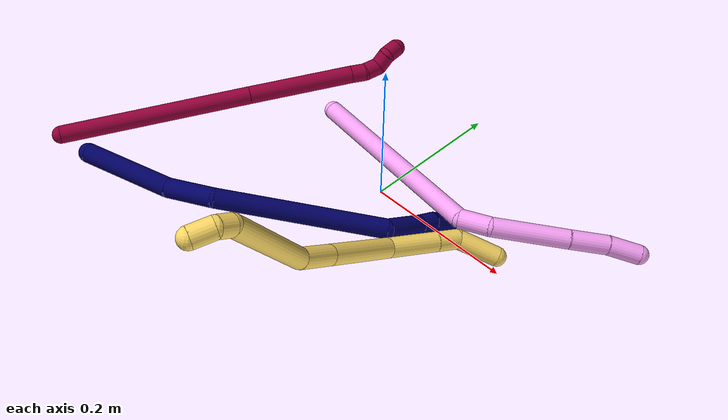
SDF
<sdf version="1.7">
 <world name="default">
  <model name="photoneo_s_sensor">
   <static>1</static>
   <pose>0 0 2 1.57079 1.57079 3.14159</pose>
   <link name="link">
    <inertial><mass>0.1</mass></inertial>
    <sensor name="sensor" type="depth">
     <update_rate>30</update_rate>
     <camera>
      <horizontal_fov>1.22</horizontal_fov>
      <image><width>1920</width><height>1200</height><format>B8G8R8</format></image>
      <clip><near>0.1</near><far>4</far></clip>
      <depth_camera><output>points</output></depth_camera>
     </camera>
     <plugin name="camera_plugin" filename="libgazebo_ros_depth_camera.so">
      <baseline>0.2</baseline>
      <alwaysOn>1</alwaysOn>
      <updateRate>0.0</updateRate>
      <cameraName>camera_ir</cameraName>
      <imageTopicName>/camera/color/image_raw</imageTopicName>
      <cameraInfoTopicName>/camera/color/camera_info</cameraInfoTopicName>
      <depthImageTopicName>/camera/depth/image_raw</depthImageTopicName>
      <depthImageCameraInfoTopicName>/camera/depth/camera_info</depthImageCameraInfoTopicName>
      <pointCloudTopicName>/camera/depth/points</pointCloudTopicName>
      <frameName>fr_optical</frameName>
      <pointCloudCutoff>0.1</pointCloudCutoff>
      <pointCloudCutoffMax>2.0</pointCloudCutoffMax>
      <distortionK1>0</distortionK1>
      <distortionK2>0</distortionK2>
      <distortionK3>0</distortionK3>
      <distortionT1>0</distortionT1>
      <distortionT2>0</distortionT2>
      <CxPrime>0</CxPrime>
      <Cx>0</Cx>
      <Cy>0</Cy>
      <focalLength>0</focalLength>
      <hackBaseline>0</hackBaseline>
     </plugin>
    </sensor>
   </link>
  </model>
  <model name="bin">
   <static>1</static>
   <link name="bottom">
    <collision name="collision-bottom">
     <pose>0 0 -0.01 0 -0 0</pose>
     <geometry><box><size>0.8 0.6 0.02</size></box></geometry>
     <surface>
      <friction><ode><mu>100</mu><mu2>100</mu2></ode></friction>
      <contact><collide_bitmask>65535</collide_bitmask></contact>
     </surface>
    </collision>
   </link>
   <link name="west_wall">
    <collision name="collision-west_wall">
     <pose>-0.41 0 0.1 0 -0 0</pose>
     <geometry><box><size>0.02 0.6 0.2</size></box></geometry>
     <surface>
      <friction><ode><mu>100</mu><mu2>100</mu2></ode></friction>
      <contact><collide_bitmask>65535</collide_bitmask></contact>
     </surface>
    </collision>
   </link>
   <link name="east_wall">
    <collision name="collision-east_wall">
     <pose>0.41 0 0.1 0 -0 0</pose>
     <geometry><box><size>0.02 0.6 0.2</size></box></geometry>
     <surface>
      <friction><ode><mu>100</mu><mu2>100</mu2></ode></friction>
      <contact><collide_bitmask>65535</collide_bitmask></contact>
     </surface>
    </collision>
   </link>
   <link name="south_wall">
    <collision name="collision-south_wall">
     <pose>0 -0.31 0.1 0 -0 0</pose>
     <geometry><box><size>0.8 0.02 0.2</size></box></geometry>
     <surface>
      <friction><ode><mu>100</mu><mu2>100</mu2></ode></friction>
      <contact><collide_bitmask>65535</collide_bitmask></contact>
     </surface>
    </collision>
   </link>
   <link name="north_wall">
    <collision name="collision-north_wall">
     <pose>0 0.31 0.1 0 -0 0</pose>
     <geometry><box><size>0.8 0.02 0.2</size></box></geometry>
     <surface>
      <friction><ode><mu>100</mu><mu2>100</mu2></ode></friction>
      <contact><collide_bitmask>65535</collide_bitmask></contact>
     </surface>
    </collision>
   </link>
  </model>
  <model name="4">
   <static>0</static>
   <link name="4">
    <collision name="collision-cylinder-e_1_1_4">
     <pose>0.112758 0.026613 0.068815 -0.369014 0.99138 -0.201148</pose>
     <geometry><cylinder><radius>0.0125</radius><length>0.269504</length></cylinder></geometry>
     <surface>
      <friction><ode><mu>1.16</mu><mu2>1.16</mu2><slip1>0</slip1><slip2>0</slip2></ode></friction>
      <contact><ode><kp>1e+06</kp><kd>1</kd><max_vel>0</max_vel><min_depth>0.001</min_depth></ode></contact>
     </surface>
    </collision>
    <visual name="visual-cylinder-e_1_1_4">
     <pose>0.112758 0.026613 0.068815 -0.369014 0.99138 -0.201148</pose>
     <geometry><cylinder><radius>0.0125</radius><length>0.269504</length></cylinder></geometry>
     <material><ambient>1 0.65098 0.996078 1</ambient></material>
    </visual>
    <collision name="collision-cylinder-e_2_4_5">
     <pose>0.241209 0.064983 0.140675 -1.31732 0.91213 -0.725718</pose>
     <geometry><cylinder><radius>0.0125</radius><length>0.039687</length></cylinder></geometry>
     <surface>
      <friction><ode><mu>1.16</mu><mu2>1.16</mu2><slip1>0</slip1><slip2>0</slip2></ode></friction>
      <contact><ode><kp>1e+06</kp><kd>1</kd><max_vel>0</max_vel><min_depth>0.001</min_depth></ode></contact>
     </surface>
    </collision>
    <visual name="visual-cylinder-e_2_4_5">
     <pose>0.241209 0.064983 0.140675 -1.31732 0.91213 -0.725718</pose>
     <geometry><cylinder><radius>0.0125</radius><length>0.039687</length></cylinder></geometry>
     <material><ambient>1 0.65098 0.996078 1</ambient></material>
    </visual>
    <collision name="collision-cylinder-e_3_5_6">
     <pose>0.292864 0.108201 0.132251 -1.92042 0.821038 -1.11283</pose>
     <geometry><cylinder><radius>0.0125</radius><length>0.098279</length></cylinder></geometry>
     <surface>
      <friction><ode><mu>1.16</mu><mu2>1.16</mu2><slip1>0</slip1><slip2>0</slip2></ode></friction>
      <contact><ode><kp>1e+06</kp><kd>1</kd><max_vel>0</max_vel><min_depth>0.001</min_depth></ode></contact>
     </surface>
    </collision>
    <visual name="visual-cylinder-e_3_5_6">
     <pose>0.292864 0.108201 0.132251 -1.92042 0.821038 -1.11283</pose>
     <geometry><cylinder><radius>0.0125</radius><length>0.098279</length></cylinder></geometry>
     <material><ambient>1 0.65098 0.996078 1</ambient></material>
    </visual>
    <collision name="collision-cylinder-e_4_6_7">
     <pose>0.346783 0.155473 0.112895 -2.03342 0.79348 -1.19039</pose>
     <geometry><cylinder><radius>0.0125</radius><length>0.050381</length></cylinder></geometry>
     <surface>
      <friction><ode><mu>1.16</mu><mu2>1.16</mu2><slip1>0</slip1><slip2>0</slip2></ode></friction>
      <contact><ode><kp>1e+06</kp><kd>1</kd><max_vel>0</max_vel><min_depth>0.001</min_depth></ode></contact>
     </surface>
    </collision>
    <visual name="visual-cylinder-e_4_6_7">
     <pose>0.346783 0.155473 0.112895 -2.03342 0.79348 -1.19039</pose>
     <geometry><cylinder><radius>0.0125</radius><length>0.050381</length></cylinder></geometry>
     <material><ambient>1 0.65098 0.996078 1</ambient></material>
    </visual>
    <collision name="collision-cylinder-e_5_7_2">
     <pose>0.381806 0.182302 0.099405 -2.04132 0.943947 -1.38827</pose>
     <geometry><cylinder><radius>0.0125</radius><length>0.042149</length></cylinder></geometry>
     <surface>
      <friction><ode><mu>1.16</mu><mu2>1.16</mu2><slip1>0</slip1><slip2>0</slip2></ode></friction>
      <contact><ode><kp>1e+06</kp><kd>1</kd><max_vel>0</max_vel><min_depth>0.001</min_depth></ode></contact>
     </surface>
    </collision>
    <visual name="visual-cylinder-e_5_7_2">
     <pose>0.381806 0.182302 0.099405 -2.04132 0.943947 -1.38827</pose>
     <geometry><cylinder><radius>0.0125</radius><length>0.042149</length></cylinder></geometry>
     <material><ambient>1 0.65098 0.996078 1</ambient></material>
    </visual>
    <collision name="collision-sphere-2">
     <pose>0.398874 0.193321 0.093801 0 -0 0</pose>
     <geometry><sphere><radius>0.0125</radius></sphere></geometry>
     <surface>
      <friction><ode><mu>1.16</mu><mu2>1.16</mu2><slip1>0</slip1><slip2>0</slip2></ode></friction>
      <contact><ode><kp>1e+06</kp><kd>1</kd><max_vel>0</max_vel><min_depth>0.001</min_depth></ode></contact>
     </surface>
    </collision>
    <visual name="visual-sphere-2">
     <pose>0.398874 0.193321 0.093801 0 -0 0</pose>
     <geometry><sphere><radius>0.0125</radius></sphere></geometry>
     <material><ambient>1 0.65098 0.996078 1</ambient></material>
    </visual>
    <collision name="collision-sphere-7">
     <pose>0.364738 0.171283 0.10501 0 -0 0</pose>
     <geometry><sphere><radius>0.0125</radius></sphere></geometry>
     <surface>
      <friction><ode><mu>1.16</mu><mu2>1.16</mu2><slip1>0</slip1><slip2>0</slip2></ode></friction>
      <contact><ode><kp>1e+06</kp><kd>1</kd><max_vel>0</max_vel><min_depth>0.001</min_depth></ode></contact>
     </surface>
    </collision>
    <visual name="visual-sphere-7">
     <pose>0.364738 0.171283 0.10501 0 -0 0</pose>
     <geometry><sphere><radius>0.0125</radius></sphere></geometry>
     <material><ambient>1 0.65098 0.996078 1</ambient></material>
    </visual>
    <collision name="collision-sphere-6">
     <pose>0.328827 0.139662 0.12078 0 -0 0</pose>
     <geometry><sphere><radius>0.0125</radius></sphere></geometry>
     <surface>
      <friction><ode><mu>1.16</mu><mu2>1.16</mu2><slip1>0</slip1><slip2>0</slip2></ode></friction>
      <contact><ode><kp>1e+06</kp><kd>1</kd><max_vel>0</max_vel><min_depth>0.001</min_depth></ode></contact>
     </surface>
    </collision>
    <visual name="visual-sphere-6">
     <pose>0.328827 0.139662 0.12078 0 -0 0</pose>
     <geometry><sphere><radius>0.0125</radius></sphere></geometry>
     <material><ambient>1 0.65098 0.996078 1</ambient></material>
    </visual>
    <collision name="collision-sphere-5">
     <pose>0.256901 0.07674 0.143721 0 -0 0</pose>
     <geometry><sphere><radius>0.0125</radius></sphere></geometry>
     <surface>
      <friction><ode><mu>1.16</mu><mu2>1.16</mu2><slip1>0</slip1><slip2>0</slip2></ode></friction>
      <contact><ode><kp>1e+06</kp><kd>1</kd><max_vel>0</max_vel><min_depth>0.001</min_depth></ode></contact>
     </surface>
    </collision>
    <visual name="visual-sphere-5">
     <pose>0.256901 0.07674 0.143721 0 -0 0</pose>
     <geometry><sphere><radius>0.0125</radius></sphere></geometry>
     <material><ambient>1 0.65098 0.996078 1</ambient></material>
    </visual>
    <collision name="collision-sphere-1">
     <geometry><sphere><radius>0.0125</radius></sphere></geometry>
     <surface>
      <friction><ode><mu>1.16</mu><mu2>1.16</mu2><slip1>0</slip1><slip2>0</slip2></ode></friction>
      <contact><ode><kp>1e+06</kp><kd>1</kd><max_vel>0</max_vel><min_depth>0.001</min_depth></ode></contact>
     </surface>
    </collision>
    <visual name="visual-sphere-1">
     <geometry><sphere><radius>0.0125</radius></sphere></geometry>
     <material><ambient>1 0.65098 0.996078 1</ambient></material>
    </visual>
    <collision name="collision-sphere-4">
     <pose>0.225516 0.053226 0.13763 0 -0 0</pose>
     <geometry><sphere><radius>0.0125</radius></sphere></geometry>
     <surface>
      <friction><ode><mu>1.16</mu><mu2>1.16</mu2><slip1>0</slip1><slip2>0</slip2></ode></friction>
      <contact><ode><kp>1e+06</kp><kd>1</kd><max_vel>0</max_vel><min_depth>0.001</min_depth></ode></contact>
     </surface>
    </collision>
    <visual name="visual-sphere-4">
     <pose>0.225516 0.053226 0.13763 0 -0 0</pose>
     <geometry><sphere><radius>0.0125</radius></sphere></geometry>
     <material><ambient>1 0.65098 0.996078 1</ambient></material>
    </visual>
    <inertial>
     <pose>0.204616 0.071804 0.094008 0 -0 0</pose>
     <mass>0.5</mass>
     <inertia>
      <ixx>0.000698</ixx>
      <ixy>0</ixy>
      <ixz>0</ixz>
      <iyy>0.001422</iyy>
      <iyz>0</iyz>
      <izz>-0.001841</izz>
     </inertia>
    </inertial>
   </link>
   <pose>-0.133405 0.041337 0.036365 0.703758 0.512741 0.031333</pose>
  </model>
  <model name="5">
   <static>0</static>
   <link name="5">
    <collision name="collision-cylinder-e_1_1_4">
     <pose>-0.000469 -0.005878 -0.012442 2.70026 -0.034043 -0.151488</pose>
     <geometry><cylinder><radius>0.0125</radius><length>0.027537</length></cylinder></geometry>
     <surface>
      <friction><ode><mu>1.16</mu><mu2>1.16</mu2><slip1>0</slip1><slip2>0</slip2></ode></friction>
      <contact><ode><kp>1e+06</kp><kd>1</kd><max_vel>0</max_vel><min_depth>0.001</min_depth></ode></contact>
     </surface>
    </collision>
    <visual name="visual-cylinder-e_1_1_4">
     <pose>-0.000469 -0.005878 -0.012442 2.70026 -0.034043 -0.151488</pose>
     <geometry><cylinder><radius>0.0125</radius><length>0.027537</length></cylinder></geometry>
     <material><ambient>1 0.858824 0.4 1</ambient></material>
    </visual>
    <collision name="collision-cylinder-e_2_4_5">
     <pose>0.002138 -0.011335 -0.034395 -3.09736 0.312423 -2.86255</pose>
     <geometry><cylinder><radius>0.0125</radius><length>0.020009</length></cylinder></geometry>
     <surface>
      <friction><ode><mu>1.16</mu><mu2>1.16</mu2><slip1>0</slip1><slip2>0</slip2></ode></friction>
      <contact><ode><kp>1e+06</kp><kd>1</kd><max_vel>0</max_vel><min_depth>0.001</min_depth></ode></contact>
     </surface>
    </collision>
    <visual name="visual-cylinder-e_2_4_5">
     <pose>0.002138 -0.011335 -0.034395 -3.09736 0.312423 -2.86255</pose>
     <geometry><cylinder><radius>0.0125</radius><length>0.020009</length></cylinder></geometry>
     <material><ambient>1 0.858824 0.4 1</ambient></material>
    </visual>
    <collision name="collision-cylinder-e_3_5_6">
     <pose>0.037023 0.025121 -0.099047 -2.56275 0.449883 -1.31034</pose>
     <geometry><cylinder><radius>0.0125</radius><length>0.146299</length></cylinder></geometry>
     <surface>
      <friction><ode><mu>1.16</mu><mu2>1.16</mu2><slip1>0</slip1><slip2>0</slip2></ode></friction>
      <contact><ode><kp>1e+06</kp><kd>1</kd><max_vel>0</max_vel><min_depth>0.001</min_depth></ode></contact>
     </surface>
    </collision>
    <visual name="visual-cylinder-e_3_5_6">
     <pose>0.037023 0.025121 -0.099047 -2.56275 0.449883 -1.31034</pose>
     <geometry><cylinder><radius>0.0125</radius><length>0.146299</length></cylinder></geometry>
     <material><ambient>1 0.858824 0.4 1</ambient></material>
    </visual>
    <collision name="collision-cylinder-e_4_6_7">
     <pose>0.078204 0.064306 -0.176658 -3.00235 0.391681 -2.46556</pose>
     <geometry><cylinder><radius>0.0125</radius><length>0.0491</length></cylinder></geometry>
     <surface>
      <friction><ode><mu>1.16</mu><mu2>1.16</mu2><slip1>0</slip1><slip2>0</slip2></ode></friction>
      <contact><ode><kp>1e+06</kp><kd>1</kd><max_vel>0</max_vel><min_depth>0.001</min_depth></ode></contact>
     </surface>
    </collision>
    <visual name="visual-cylinder-e_4_6_7">
     <pose>0.078204 0.064306 -0.176658 -3.00235 0.391681 -2.46556</pose>
     <geometry><cylinder><radius>0.0125</radius><length>0.0491</length></cylinder></geometry>
     <material><ambient>1 0.858824 0.4 1</ambient></material>
    </visual>
    <collision name="collision-cylinder-e_5_7_8">
     <pose>0.10717 0.073741 -0.24731 -3.01186 0.383321 -2.49553</pose>
     <geometry><cylinder><radius>0.0125</radius><length>0.104782</length></cylinder></geometry>
     <surface>
      <friction><ode><mu>1.16</mu><mu2>1.16</mu2><slip1>0</slip1><slip2>0</slip2></ode></friction>
      <contact><ode><kp>1e+06</kp><kd>1</kd><max_vel>0</max_vel><min_depth>0.001</min_depth></ode></contact>
     </surface>
    </collision>
    <visual name="visual-cylinder-e_5_7_8">
     <pose>0.10717 0.073741 -0.24731 -3.01186 0.383321 -2.49553</pose>
     <geometry><cylinder><radius>0.0125</radius><length>0.104782</length></cylinder></geometry>
     <material><ambient>1 0.858824 0.4 1</ambient></material>
    </visual>
    <collision name="collision-cylinder-e_6_8_9">
     <pose>0.128311 0.076997 -0.328807 3.05091 0.04618 0.941626</pose>
     <geometry><cylinder><radius>0.0125</radius><length>0.06698</length></cylinder></geometry>
     <surface>
      <friction><ode><mu>1.16</mu><mu2>1.16</mu2><slip1>0</slip1><slip2>0</slip2></ode></friction>
      <contact><ode><kp>1e+06</kp><kd>1</kd><max_vel>0</max_vel><min_depth>0.001</min_depth></ode></contact>
     </surface>
    </collision>
    <visual name="visual-cylinder-e_6_8_9">
     <pose>0.128311 0.076997 -0.328807 3.05091 0.04618 0.941626</pose>
     <geometry><cylinder><radius>0.0125</radius><length>0.06698</length></cylinder></geometry>
     <material><ambient>1 0.858824 0.4 1</ambient></material>
    </visual>
    <collision name="collision-cylinder-e_7_9_10">
     <pose>0.130638 0.072564 -0.377794 3.05227 0.049632 1.01398</pose>
     <geometry><cylinder><radius>0.0125</radius><length>0.031504</length></cylinder></geometry>
     <surface>
      <friction><ode><mu>1.16</mu><mu2>1.16</mu2><slip1>0</slip1><slip2>0</slip2></ode></friction>
      <contact><ode><kp>1e+06</kp><kd>1</kd><max_vel>0</max_vel><min_depth>0.001</min_depth></ode></contact>
     </surface>
    </collision>
    <visual name="visual-cylinder-e_7_9_10">
     <pose>0.130638 0.072564 -0.377794 3.05227 0.049632 1.01398</pose>
     <geometry><cylinder><radius>0.0125</radius><length>0.031504</length></cylinder></geometry>
     <material><ambient>1 0.858824 0.4 1</ambient></material>
    </visual>
    <collision name="collision-cylinder-e_8_10_2">
     <pose>0.120304 0.077766 -0.417046 -2.86847 -0.426093 2.00978</pose>
     <geometry><cylinder><radius>0.0125</radius><length>0.053788</length></cylinder></geometry>
     <surface>
      <friction><ode><mu>1.16</mu><mu2>1.16</mu2><slip1>0</slip1><slip2>0</slip2></ode></friction>
      <contact><ode><kp>1e+06</kp><kd>1</kd><max_vel>0</max_vel><min_depth>0.001</min_depth></ode></contact>
     </surface>
    </collision>
    <visual name="visual-cylinder-e_8_10_2">
     <pose>0.120304 0.077766 -0.417046 -2.86847 -0.426093 2.00978</pose>
     <geometry><cylinder><radius>0.0125</radius><length>0.053788</length></cylinder></geometry>
     <material><ambient>1 0.858824 0.4 1</ambient></material>
    </visual>
    <collision name="collision-sphere-2">
     <pose>0.109188 0.084372 -0.440628 0 -0 0</pose>
     <geometry><sphere><radius>0.0125</radius></sphere></geometry>
     <surface>
      <friction><ode><mu>1.16</mu><mu2>1.16</mu2><slip1>0</slip1><slip2>0</slip2></ode></friction>
      <contact><ode><kp>1e+06</kp><kd>1</kd><max_vel>0</max_vel><min_depth>0.001</min_depth></ode></contact>
     </surface>
    </collision>
    <visual name="visual-sphere-2">
     <pose>0.109188 0.084372 -0.440628 0 -0 0</pose>
     <geometry><sphere><radius>0.0125</radius></sphere></geometry>
     <material><ambient>1 0.858824 0.4 1</ambient></material>
    </visual>
    <collision name="collision-sphere-10">
     <pose>0.13142 0.071161 -0.393464 0 -0 0</pose>
     <geometry><sphere><radius>0.0125</radius></sphere></geometry>
     <surface>
      <friction><ode><mu>1.16</mu><mu2>1.16</mu2><slip1>0</slip1><slip2>0</slip2></ode></friction>
      <contact><ode><kp>1e+06</kp><kd>1</kd><max_vel>0</max_vel><min_depth>0.001</min_depth></ode></contact>
     </surface>
    </collision>
    <visual name="visual-sphere-10">
     <pose>0.13142 0.071161 -0.393464 0 -0 0</pose>
     <geometry><sphere><radius>0.0125</radius></sphere></geometry>
     <material><ambient>1 0.858824 0.4 1</ambient></material>
    </visual>
    <collision name="collision-sphere-9">
     <pose>0.129857 0.073967 -0.362124 0 -0 0</pose>
     <geometry><sphere><radius>0.0125</radius></sphere></geometry>
     <surface>
      <friction><ode><mu>1.16</mu><mu2>1.16</mu2><slip1>0</slip1><slip2>0</slip2></ode></friction>
      <contact><ode><kp>1e+06</kp><kd>1</kd><max_vel>0</max_vel><min_depth>0.001</min_depth></ode></contact>
     </surface>
    </collision>
    <visual name="visual-sphere-9">
     <pose>0.129857 0.073967 -0.362124 0 -0 0</pose>
     <geometry><sphere><radius>0.0125</radius></sphere></geometry>
     <material><ambient>1 0.858824 0.4 1</ambient></material>
    </visual>
    <collision name="collision-sphere-4">
     <pose>-0.000937 -0.011756 -0.024884 0 -0 0</pose>
     <geometry><sphere><radius>0.0125</radius></sphere></geometry>
     <surface>
      <friction><ode><mu>1.16</mu><mu2>1.16</mu2><slip1>0</slip1><slip2>0</slip2></ode></friction>
      <contact><ode><kp>1e+06</kp><kd>1</kd><max_vel>0</max_vel><min_depth>0.001</min_depth></ode></contact>
     </surface>
    </collision>
    <visual name="visual-sphere-4">
     <pose>-0.000937 -0.011756 -0.024884 0 -0 0</pose>
     <geometry><sphere><radius>0.0125</radius></sphere></geometry>
     <material><ambient>1 0.858824 0.4 1</ambient></material>
    </visual>
    <collision name="collision-sphere-1">
     <geometry><sphere><radius>0.0125</radius></sphere></geometry>
     <surface>
      <friction><ode><mu>1.16</mu><mu2>1.16</mu2><slip1>0</slip1><slip2>0</slip2></ode></friction>
      <contact><ode><kp>1e+06</kp><kd>1</kd><max_vel>0</max_vel><min_depth>0.001</min_depth></ode></contact>
     </surface>
    </collision>
    <visual name="visual-sphere-1">
     <geometry><sphere><radius>0.0125</radius></sphere></geometry>
     <material><ambient>1 0.858824 0.4 1</ambient></material>
    </visual>
    <collision name="collision-sphere-8">
     <pose>0.126765 0.080027 -0.29549 0 -0 0</pose>
     <geometry><sphere><radius>0.0125</radius></sphere></geometry>
     <surface>
      <friction><ode><mu>1.16</mu><mu2>1.16</mu2><slip1>0</slip1><slip2>0</slip2></ode></friction>
      <contact><ode><kp>1e+06</kp><kd>1</kd><max_vel>0</max_vel><min_depth>0.001</min_depth></ode></contact>
     </surface>
    </collision>
    <visual name="visual-sphere-8">
     <pose>0.126765 0.080027 -0.29549 0 -0 0</pose>
     <geometry><sphere><radius>0.0125</radius></sphere></geometry>
     <material><ambient>1 0.858824 0.4 1</ambient></material>
    </visual>
    <collision name="collision-sphere-5">
     <pose>0.005213 -0.010914 -0.043906 0 -0 0</pose>
     <geometry><sphere><radius>0.0125</radius></sphere></geometry>
     <surface>
      <friction><ode><mu>1.16</mu><mu2>1.16</mu2><slip1>0</slip1><slip2>0</slip2></ode></friction>
      <contact><ode><kp>1e+06</kp><kd>1</kd><max_vel>0</max_vel><min_depth>0.001</min_depth></ode></contact>
     </surface>
    </collision>
    <visual name="visual-sphere-5">
     <pose>0.005213 -0.010914 -0.043906 0 -0 0</pose>
     <geometry><sphere><radius>0.0125</radius></sphere></geometry>
     <material><ambient>1 0.858824 0.4 1</ambient></material>
    </visual>
    <collision name="collision-sphere-6">
     <pose>0.068832 0.061156 -0.154187 0 -0 0</pose>
     <geometry><sphere><radius>0.0125</radius></sphere></geometry>
     <surface>
      <friction><ode><mu>1.16</mu><mu2>1.16</mu2><slip1>0</slip1><slip2>0</slip2></ode></friction>
      <contact><ode><kp>1e+06</kp><kd>1</kd><max_vel>0</max_vel><min_depth>0.001</min_depth></ode></contact>
     </surface>
    </collision>
    <visual name="visual-sphere-6">
     <pose>0.068832 0.061156 -0.154187 0 -0 0</pose>
     <geometry><sphere><radius>0.0125</radius></sphere></geometry>
     <material><ambient>1 0.858824 0.4 1</ambient></material>
    </visual>
    <collision name="collision-sphere-7">
     <pose>0.087576 0.067455 -0.199129 0 -0 0</pose>
     <geometry><sphere><radius>0.0125</radius></sphere></geometry>
     <surface>
      <friction><ode><mu>1.16</mu><mu2>1.16</mu2><slip1>0</slip1><slip2>0</slip2></ode></friction>
      <contact><ode><kp>1e+06</kp><kd>1</kd><max_vel>0</max_vel><min_depth>0.001</min_depth></ode></contact>
     </surface>
    </collision>
    <visual name="visual-sphere-7">
     <pose>0.087576 0.067455 -0.199129 0 -0 0</pose>
     <geometry><sphere><radius>0.0125</radius></sphere></geometry>
     <material><ambient>1 0.858824 0.4 1</ambient></material>
    </visual>
    <inertial>
     <pose>0.079393 0.051594 -0.212933 0 -0 0</pose>
     <mass>0.5</mass>
     <inertia>
      <ixx>-0.000256</ixx>
      <ixy>0</ixy>
      <ixz>0</ixz>
      <iyy>-0.000167</iyy>
      <iyz>0</iyz>
      <izz>-0.000332</izz>
     </inertia>
    </inertial>
   </link>
   <pose>0.09228 -0.367087 0.256306 -1.23925 0.283969 2.79</pose>
  </model>
  <model name="7">
   <static>0</static>
   <link name="7">
    <collision name="collision-cylinder-e_1_1_4">
     <pose>0.036127 -0.007947 -0.047747 2.97666 0.641167 2.65364</pose>
     <geometry><cylinder><radius>0.0125</radius><length>0.120798</length></cylinder></geometry>
     <surface>
      <friction><ode><mu>1.16</mu><mu2>1.16</mu2><slip1>0</slip1><slip2>0</slip2></ode></friction>
      <contact><ode><kp>1e+06</kp><kd>1</kd><max_vel>0</max_vel><min_depth>0.001</min_depth></ode></contact>
     </surface>
    </collision>
    <visual name="visual-cylinder-e_1_1_4">
     <pose>0.036127 -0.007947 -0.047747 2.97666 0.641167 2.65364</pose>
     <geometry><cylinder><radius>0.0125</radius><length>0.120798</length></cylinder></geometry>
     <material><ambient>0.003922 0 0.403922 1</ambient></material>
    </visual>
    <collision name="collision-cylinder-e_2_4_5">
     <pose>0.091597 -0.014332 -0.12088 -3.08011 0.650213 -2.95962</pose>
     <geometry><cylinder><radius>0.0125</radius><length>0.063909</length></cylinder></geometry>
     <surface>
      <friction><ode><mu>1.16</mu><mu2>1.16</mu2><slip1>0</slip1><slip2>0</slip2></ode></friction>
      <contact><ode><kp>1e+06</kp><kd>1</kd><max_vel>0</max_vel><min_depth>0.001</min_depth></ode></contact>
     </surface>
    </collision>
    <visual name="visual-cylinder-e_2_4_5">
     <pose>0.091597 -0.014332 -0.12088 -3.08011 0.650213 -2.95962</pose>
     <geometry><cylinder><radius>0.0125</radius><length>0.063909</length></cylinder></geometry>
     <material><ambient>0.003922 0 0.403922 1</ambient></material>
    </visual>
    <collision name="collision-cylinder-e_3_5_6">
     <pose>0.133963 -0.013772 -0.250235 3.13194 0.217908 3.05345</pose>
     <geometry><cylinder><radius>0.0125</radius><length>0.212985</length></cylinder></geometry>
     <surface>
      <friction><ode><mu>1.16</mu><mu2>1.16</mu2><slip1>0</slip1><slip2>0</slip2></ode></friction>
      <contact><ode><kp>1e+06</kp><kd>1</kd><max_vel>0</max_vel><min_depth>0.001</min_depth></ode></contact>
     </surface>
    </collision>
    <visual name="visual-cylinder-e_3_5_6">
     <pose>0.133963 -0.013772 -0.250235 3.13194 0.217908 3.05345</pose>
     <geometry><cylinder><radius>0.0125</radius><length>0.212985</length></cylinder></geometry>
     <material><ambient>0.003922 0 0.403922 1</ambient></material>
    </visual>
    <collision name="collision-cylinder-e_4_6_7">
     <pose>0.147106 -0.012206 -0.378146 -3.03472 -0.38933 2.61176</pose>
     <geometry><cylinder><radius>0.0125</radius><length>0.052054</length></cylinder></geometry>
     <surface>
      <friction><ode><mu>1.16</mu><mu2>1.16</mu2><slip1>0</slip1><slip2>0</slip2></ode></friction>
      <contact><ode><kp>1e+06</kp><kd>1</kd><max_vel>0</max_vel><min_depth>0.001</min_depth></ode></contact>
     </surface>
    </collision>
    <visual name="visual-cylinder-e_4_6_7">
     <pose>0.147106 -0.012206 -0.378146 -3.03472 -0.38933 2.61176</pose>
     <geometry><cylinder><radius>0.0125</radius><length>0.052054</length></cylinder></geometry>
     <material><ambient>0.003922 0 0.403922 1</ambient></material>
    </visual>
    <collision name="collision-cylinder-e_5_7_8">
     <pose>0.132719 -0.007808 -0.412216 -2.96282 -0.412831 2.33274</pose>
     <geometry><cylinder><radius>0.0125</radius><length>0.022472</length></cylinder></geometry>
     <surface>
      <friction><ode><mu>1.16</mu><mu2>1.16</mu2><slip1>0</slip1><slip2>0</slip2></ode></friction>
      <contact><ode><kp>1e+06</kp><kd>1</kd><max_vel>0</max_vel><min_depth>0.001</min_depth></ode></contact>
     </surface>
    </collision>
    <visual name="visual-cylinder-e_5_7_8">
     <pose>0.132719 -0.007808 -0.412216 -2.96282 -0.412831 2.33274</pose>
     <geometry><cylinder><radius>0.0125</radius><length>0.022472</length></cylinder></geometry>
     <material><ambient>0.003922 0 0.403922 1</ambient></material>
    </visual>
    <collision name="collision-cylinder-e_6_8_2">
     <pose>0.123328 -0.006332 -0.435344 3.11434 -0.359206 -2.99178</pose>
     <geometry><cylinder><radius>0.0125</radius><length>0.027782</length></cylinder></geometry>
     <surface>
      <friction><ode><mu>1.16</mu><mu2>1.16</mu2><slip1>0</slip1><slip2>0</slip2></ode></friction>
      <contact><ode><kp>1e+06</kp><kd>1</kd><max_vel>0</max_vel><min_depth>0.001</min_depth></ode></contact>
     </surface>
    </collision>
    <visual name="visual-cylinder-e_6_8_2">
     <pose>0.123328 -0.006332 -0.435344 3.11434 -0.359206 -2.99178</pose>
     <geometry><cylinder><radius>0.0125</radius><length>0.027782</length></cylinder></geometry>
     <material><ambient>0.003922 0 0.403922 1</ambient></material>
    </visual>
    <collision name="collision-sphere-2">
     <pose>0.118445 -0.006686 -0.448344 0 -0 0</pose>
     <geometry><sphere><radius>0.0125</radius></sphere></geometry>
     <surface>
      <friction><ode><mu>1.16</mu><mu2>1.16</mu2><slip1>0</slip1><slip2>0</slip2></ode></friction>
      <contact><ode><kp>1e+06</kp><kd>1</kd><max_vel>0</max_vel><min_depth>0.001</min_depth></ode></contact>
     </surface>
    </collision>
    <visual name="visual-sphere-2">
     <pose>0.118445 -0.006686 -0.448344 0 -0 0</pose>
     <geometry><sphere><radius>0.0125</radius></sphere></geometry>
     <material><ambient>0.003922 0 0.403922 1</ambient></material>
    </visual>
    <collision name="collision-sphere-4">
     <pose>0.072253 -0.015895 -0.095493 0 -0 0</pose>
     <geometry><sphere><radius>0.0125</radius></sphere></geometry>
     <surface>
      <friction><ode><mu>1.16</mu><mu2>1.16</mu2><slip1>0</slip1><slip2>0</slip2></ode></friction>
      <contact><ode><kp>1e+06</kp><kd>1</kd><max_vel>0</max_vel><min_depth>0.001</min_depth></ode></contact>
     </surface>
    </collision>
    <visual name="visual-sphere-4">
     <pose>0.072253 -0.015895 -0.095493 0 -0 0</pose>
     <geometry><sphere><radius>0.0125</radius></sphere></geometry>
     <material><ambient>0.003922 0 0.403922 1</ambient></material>
    </visual>
    <collision name="collision-sphere-1">
     <geometry><sphere><radius>0.0125</radius></sphere></geometry>
     <surface>
      <friction><ode><mu>1.16</mu><mu2>1.16</mu2><slip1>0</slip1><slip2>0</slip2></ode></friction>
      <contact><ode><kp>1e+06</kp><kd>1</kd><max_vel>0</max_vel><min_depth>0.001</min_depth></ode></contact>
     </surface>
    </collision>
    <visual name="visual-sphere-1">
     <geometry><sphere><radius>0.0125</radius></sphere></geometry>
     <material><ambient>0.003922 0 0.403922 1</ambient></material>
    </visual>
    <collision name="collision-sphere-8">
     <pose>0.128211 -0.005978 -0.422345 0 -0 0</pose>
     <geometry><sphere><radius>0.0125</radius></sphere></geometry>
     <surface>
      <friction><ode><mu>1.16</mu><mu2>1.16</mu2><slip1>0</slip1><slip2>0</slip2></ode></friction>
      <contact><ode><kp>1e+06</kp><kd>1</kd><max_vel>0</max_vel><min_depth>0.001</min_depth></ode></contact>
     </surface>
    </collision>
    <visual name="visual-sphere-8">
     <pose>0.128211 -0.005978 -0.422345 0 -0 0</pose>
     <geometry><sphere><radius>0.0125</radius></sphere></geometry>
     <material><ambient>0.003922 0 0.403922 1</ambient></material>
    </visual>
    <collision name="collision-sphere-5">
     <pose>0.110941 -0.012769 -0.146266 0 -0 0</pose>
     <geometry><sphere><radius>0.0125</radius></sphere></geometry>
     <surface>
      <friction><ode><mu>1.16</mu><mu2>1.16</mu2><slip1>0</slip1><slip2>0</slip2></ode></friction>
      <contact><ode><kp>1e+06</kp><kd>1</kd><max_vel>0</max_vel><min_depth>0.001</min_depth></ode></contact>
     </surface>
    </collision>
    <visual name="visual-sphere-5">
     <pose>0.110941 -0.012769 -0.146266 0 -0 0</pose>
     <geometry><sphere><radius>0.0125</radius></sphere></geometry>
     <material><ambient>0.003922 0 0.403922 1</ambient></material>
    </visual>
    <collision name="collision-sphere-6">
     <pose>0.156985 -0.014775 -0.354205 0 -0 0</pose>
     <geometry><sphere><radius>0.0125</radius></sphere></geometry>
     <surface>
      <friction><ode><mu>1.16</mu><mu2>1.16</mu2><slip1>0</slip1><slip2>0</slip2></ode></friction>
      <contact><ode><kp>1e+06</kp><kd>1</kd><max_vel>0</max_vel><min_depth>0.001</min_depth></ode></contact>
     </surface>
    </collision>
    <visual name="visual-sphere-6">
     <pose>0.156985 -0.014775 -0.354205 0 -0 0</pose>
     <geometry><sphere><radius>0.0125</radius></sphere></geometry>
     <material><ambient>0.003922 0 0.403922 1</ambient></material>
    </visual>
    <collision name="collision-sphere-7">
     <pose>0.137227 -0.009638 -0.402088 0 -0 0</pose>
     <geometry><sphere><radius>0.0125</radius></sphere></geometry>
     <surface>
      <friction><ode><mu>1.16</mu><mu2>1.16</mu2><slip1>0</slip1><slip2>0</slip2></ode></friction>
      <contact><ode><kp>1e+06</kp><kd>1</kd><max_vel>0</max_vel><min_depth>0.001</min_depth></ode></contact>
     </surface>
    </collision>
    <visual name="visual-sphere-7">
     <pose>0.137227 -0.009638 -0.402088 0 -0 0</pose>
     <geometry><sphere><radius>0.0125</radius></sphere></geometry>
     <material><ambient>0.003922 0 0.403922 1</ambient></material>
    </visual>
    <inertial>
     <pose>0.105633 -0.011592 -0.215663 0 -0 0</pose>
     <mass>0.5</mass>
     <inertia>
      <ixx>-0.000792</ixx>
      <ixy>0</ixy>
      <ixz>0</ixz>
      <iyy>0.00112</iyy>
      <iyz>0</iyz>
      <izz>-0.000284</izz>
     </inertia>
    </inertial>
   </link>
   <pose>-0.240688 -0.283402 0.091892 1.23858 -0.506139 -0.474212</pose>
  </model>
  <model name="8">
   <static>0</static>
   <link name="8">
    <collision name="collision-cylinder-e_1_1_4">
     <pose>0.003282 0.089917 -0.099851 -2.4085 0.024422 -0.063597</pose>
     <geometry><cylinder><radius>0.0125</radius><length>0.26882</length></cylinder></geometry>
     <surface>
      <friction><ode><mu>1.16</mu><mu2>1.16</mu2><slip1>0</slip1><slip2>0</slip2></ode></friction>
      <contact><ode><kp>1e+06</kp><kd>1</kd><max_vel>0</max_vel><min_depth>0.001</min_depth></ode></contact>
     </surface>
    </collision>
    <visual name="visual-cylinder-e_1_1_4">
     <pose>0.003282 0.089917 -0.099851 -2.4085 0.024422 -0.063597</pose>
     <geometry><cylinder><radius>0.0125</radius><length>0.26882</length></cylinder></geometry>
     <material><ambient>0.584314 0 0.227451 1</ambient></material>
    </visual>
    <collision name="collision-cylinder-e_2_4_5">
     <pose>0.006758 0.229692 -0.254711 -2.40526 0.002608 -0.006762</pose>
     <geometry><cylinder><radius>0.0125</radius><length>0.148484</length></cylinder></geometry>
     <surface>
      <friction><ode><mu>1.16</mu><mu2>1.16</mu2><slip1>0</slip1><slip2>0</slip2></ode></friction>
      <contact><ode><kp>1e+06</kp><kd>1</kd><max_vel>0</max_vel><min_depth>0.001</min_depth></ode></contact>
     </surface>
    </collision>
    <visual name="visual-cylinder-e_2_4_5">
     <pose>0.006758 0.229692 -0.254711 -2.40526 0.002608 -0.006762</pose>
     <geometry><cylinder><radius>0.0125</radius><length>0.148484</length></cylinder></geometry>
     <material><ambient>0.584314 0 0.227451 1</ambient></material>
    </visual>
    <collision name="collision-cylinder-e_3_5_6">
     <pose>0.006974 0.286132 -0.317519 -2.44065 0.002177 -0.005955</pose>
     <geometry><cylinder><radius>0.0125</radius><length>0.020411</length></cylinder></geometry>
     <surface>
      <friction><ode><mu>1.16</mu><mu2>1.16</mu2><slip1>0</slip1><slip2>0</slip2></ode></friction>
      <contact><ode><kp>1e+06</kp><kd>1</kd><max_vel>0</max_vel><min_depth>0.001</min_depth></ode></contact>
     </surface>
    </collision>
    <visual name="visual-cylinder-e_3_5_6">
     <pose>0.006974 0.286132 -0.317519 -2.44065 0.002177 -0.005955</pose>
     <geometry><cylinder><radius>0.0125</radius><length>0.020411</length></cylinder></geometry>
     <material><ambient>0.584314 0 0.227451 1</ambient></material>
    </visual>
    <collision name="collision-cylinder-e_4_6_7">
     <pose>0.005672 0.302009 -0.331283 -2.14137 -0.119342 0.21779</pose>
     <geometry><cylinder><radius>0.0125</radius><length>0.022247</length></cylinder></geometry>
     <surface>
      <friction><ode><mu>1.16</mu><mu2>1.16</mu2><slip1>0</slip1><slip2>0</slip2></ode></friction>
      <contact><ode><kp>1e+06</kp><kd>1</kd><max_vel>0</max_vel><min_depth>0.001</min_depth></ode></contact>
     </surface>
    </collision>
    <visual name="visual-cylinder-e_4_6_7">
     <pose>0.005672 0.302009 -0.331283 -2.14137 -0.119342 0.21779</pose>
     <geometry><cylinder><radius>0.0125</radius><length>0.022247</length></cylinder></geometry>
     <material><ambient>0.584314 0 0.227451 1</ambient></material>
    </visual>
    <collision name="collision-cylinder-e_5_7_8">
     <pose>0.008822 0.320084 -0.338967 -1.76404 0.463703 -0.558562</pose>
     <geometry><cylinder><radius>0.0125</radius><length>0.020006</length></cylinder></geometry>
     <surface>
      <friction><ode><mu>1.16</mu><mu2>1.16</mu2><slip1>0</slip1><slip2>0</slip2></ode></friction>
      <contact><ode><kp>1e+06</kp><kd>1</kd><max_vel>0</max_vel><min_depth>0.001</min_depth></ode></contact>
     </surface>
    </collision>
    <visual name="visual-cylinder-e_5_7_8">
     <pose>0.008822 0.320084 -0.338967 -1.76404 0.463703 -0.558562</pose>
     <geometry><cylinder><radius>0.0125</radius><length>0.020006</length></cylinder></geometry>
     <material><ambient>0.584314 0 0.227451 1</ambient></material>
    </visual>
    <collision name="collision-cylinder-e_6_8_2">
     <pose>0.011123 0.338144 -0.343765 -1.89127 -0.21867 0.301879</pose>
     <geometry><cylinder><radius>0.0125</radius><length>0.020032</length></cylinder></geometry>
     <surface>
      <friction><ode><mu>1.16</mu><mu2>1.16</mu2><slip1>0</slip1><slip2>0</slip2></ode></friction>
      <contact><ode><kp>1e+06</kp><kd>1</kd><max_vel>0</max_vel><min_depth>0.001</min_depth></ode></contact>
     </surface>
    </collision>
    <visual name="visual-cylinder-e_6_8_2">
     <pose>0.011123 0.338144 -0.343765 -1.89127 -0.21867 0.301879</pose>
     <geometry><cylinder><radius>0.0125</radius><length>0.020032</length></cylinder></geometry>
     <material><ambient>0.584314 0 0.227451 1</ambient></material>
    </visual>
    <collision name="collision-sphere-2">
     <pose>0.00895 0.347424 -0.346845 0 -0 0</pose>
     <geometry><sphere><radius>0.0125</radius></sphere></geometry>
     <surface>
      <friction><ode><mu>1.16</mu><mu2>1.16</mu2><slip1>0</slip1><slip2>0</slip2></ode></friction>
      <contact><ode><kp>1e+06</kp><kd>1</kd><max_vel>0</max_vel><min_depth>0.001</min_depth></ode></contact>
     </surface>
    </collision>
    <visual name="visual-sphere-2">
     <pose>0.00895 0.347424 -0.346845 0 -0 0</pose>
     <geometry><sphere><radius>0.0125</radius></sphere></geometry>
     <material><ambient>0.584314 0 0.227451 1</ambient></material>
    </visual>
    <collision name="collision-sphere-4">
     <pose>0.006564 0.179833 -0.199703 0 -0 0</pose>
     <geometry><sphere><radius>0.0125</radius></sphere></geometry>
     <surface>
      <friction><ode><mu>1.16</mu><mu2>1.16</mu2><slip1>0</slip1><slip2>0</slip2></ode></friction>
      <contact><ode><kp>1e+06</kp><kd>1</kd><max_vel>0</max_vel><min_depth>0.001</min_depth></ode></contact>
     </surface>
    </collision>
    <visual name="visual-sphere-4">
     <pose>0.006564 0.179833 -0.199703 0 -0 0</pose>
     <geometry><sphere><radius>0.0125</radius></sphere></geometry>
     <material><ambient>0.584314 0 0.227451 1</ambient></material>
    </visual>
    <collision name="collision-sphere-1">
     <geometry><sphere><radius>0.0125</radius></sphere></geometry>
     <surface>
      <friction><ode><mu>1.16</mu><mu2>1.16</mu2><slip1>0</slip1><slip2>0</slip2></ode></friction>
      <contact><ode><kp>1e+06</kp><kd>1</kd><max_vel>0</max_vel><min_depth>0.001</min_depth></ode></contact>
     </surface>
    </collision>
    <visual name="visual-sphere-1">
     <geometry><sphere><radius>0.0125</radius></sphere></geometry>
     <material><ambient>0.584314 0 0.227451 1</ambient></material>
    </visual>
    <collision name="collision-sphere-8">
     <pose>0.013296 0.328865 -0.340685 0 -0 0</pose>
     <geometry><sphere><radius>0.0125</radius></sphere></geometry>
     <surface>
      <friction><ode><mu>1.16</mu><mu2>1.16</mu2><slip1>0</slip1><slip2>0</slip2></ode></friction>
      <contact><ode><kp>1e+06</kp><kd>1</kd><max_vel>0</max_vel><min_depth>0.001</min_depth></ode></contact>
     </surface>
    </collision>
    <visual name="visual-sphere-8">
     <pose>0.013296 0.328865 -0.340685 0 -0 0</pose>
     <geometry><sphere><radius>0.0125</radius></sphere></geometry>
     <material><ambient>0.584314 0 0.227451 1</ambient></material>
    </visual>
    <collision name="collision-sphere-5">
     <pose>0.006952 0.279551 -0.309719 0 -0 0</pose>
     <geometry><sphere><radius>0.0125</radius></sphere></geometry>
     <surface>
      <friction><ode><mu>1.16</mu><mu2>1.16</mu2><slip1>0</slip1><slip2>0</slip2></ode></friction>
      <contact><ode><kp>1e+06</kp><kd>1</kd><max_vel>0</max_vel><min_depth>0.001</min_depth></ode></contact>
     </surface>
    </collision>
    <visual name="visual-sphere-5">
     <pose>0.006952 0.279551 -0.309719 0 -0 0</pose>
     <geometry><sphere><radius>0.0125</radius></sphere></geometry>
     <material><ambient>0.584314 0 0.227451 1</ambient></material>
    </visual>
    <collision name="collision-sphere-6">
     <pose>0.006996 0.292714 -0.325318 0 -0 0</pose>
     <geometry><sphere><radius>0.0125</radius></sphere></geometry>
     <surface>
      <friction><ode><mu>1.16</mu><mu2>1.16</mu2><slip1>0</slip1><slip2>0</slip2></ode></friction>
      <contact><ode><kp>1e+06</kp><kd>1</kd><max_vel>0</max_vel><min_depth>0.001</min_depth></ode></contact>
     </surface>
    </collision>
    <visual name="visual-sphere-6">
     <pose>0.006996 0.292714 -0.325318 0 -0 0</pose>
     <geometry><sphere><radius>0.0125</radius></sphere></geometry>
     <material><ambient>0.584314 0 0.227451 1</ambient></material>
    </visual>
    <collision name="collision-sphere-7">
     <pose>0.004347 0.311304 -0.337248 0 -0 0</pose>
     <geometry><sphere><radius>0.0125</radius></sphere></geometry>
     <surface>
      <friction><ode><mu>1.16</mu><mu2>1.16</mu2><slip1>0</slip1><slip2>0</slip2></ode></friction>
      <contact><ode><kp>1e+06</kp><kd>1</kd><max_vel>0</max_vel><min_depth>0.001</min_depth></ode></contact>
     </surface>
    </collision>
    <visual name="visual-sphere-7">
     <pose>0.004347 0.311304 -0.337248 0 -0 0</pose>
     <geometry><sphere><radius>0.0125</radius></sphere></geometry>
     <material><ambient>0.584314 0 0.227451 1</ambient></material>
    </visual>
    <inertial>
     <pose>0.005107 0.168027 -0.184362 0 -0 0</pose>
     <mass>0.5</mass>
     <inertia>
      <ixx>0.001805</ixx>
      <ixy>0</ixy>
      <ixz>0</ixz>
      <iyy>-0.001494</iyy>
      <iyz>0</iyz>
      <izz>-0.00135</izz>
     </inertia>
    </inertial>
   </link>
   <pose>-0.379777 -0.249226 0.012212 0.967819 -1.02753 -0.647814</pose>
  </model>
 </world>
</sdf>
